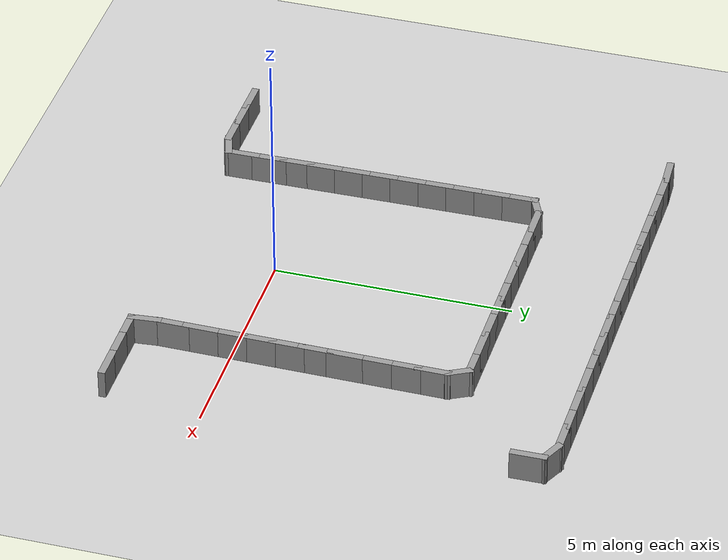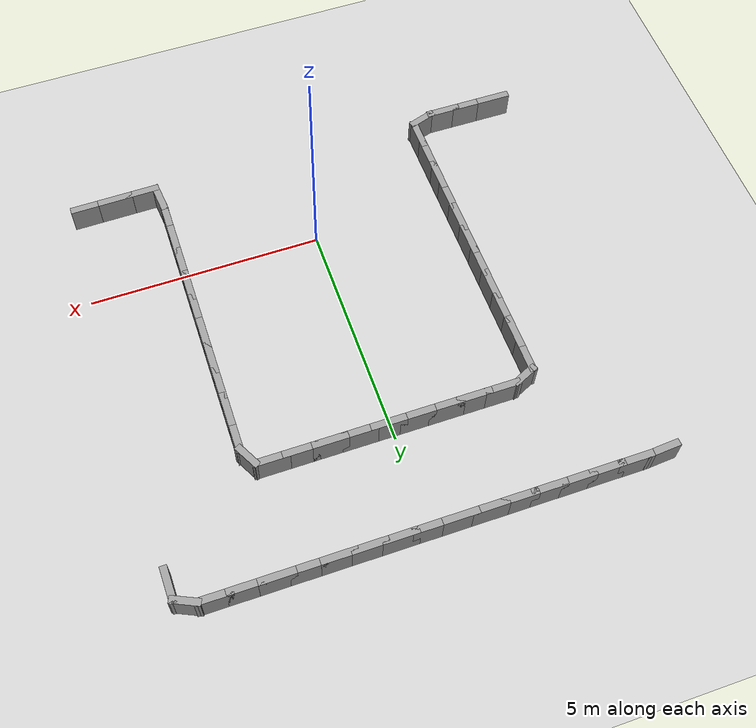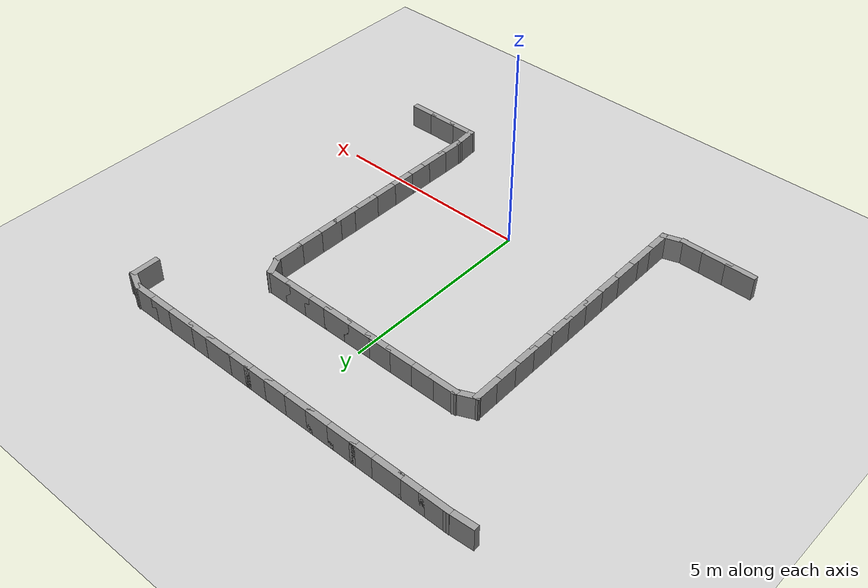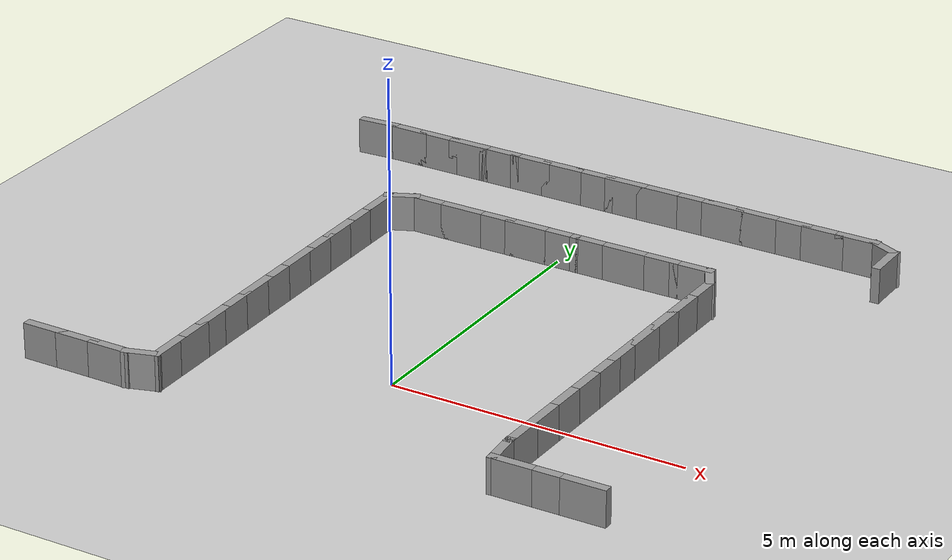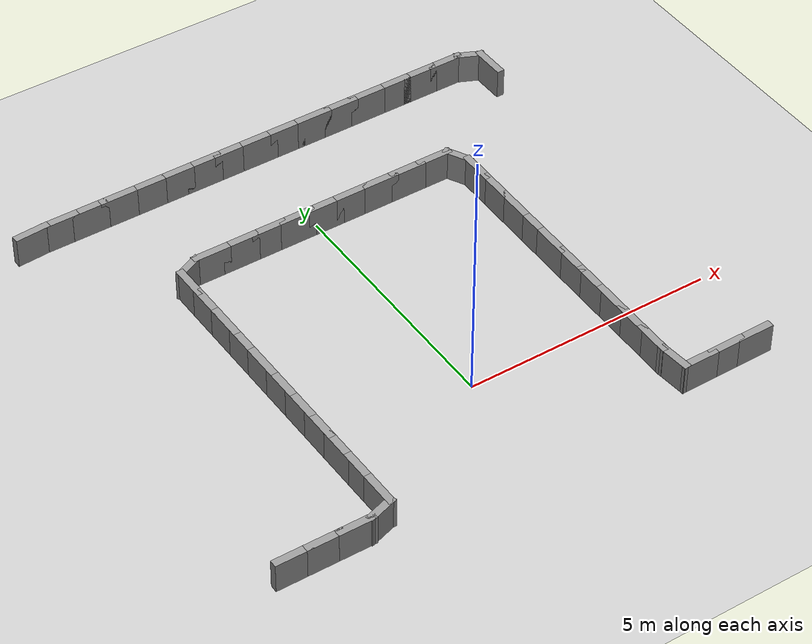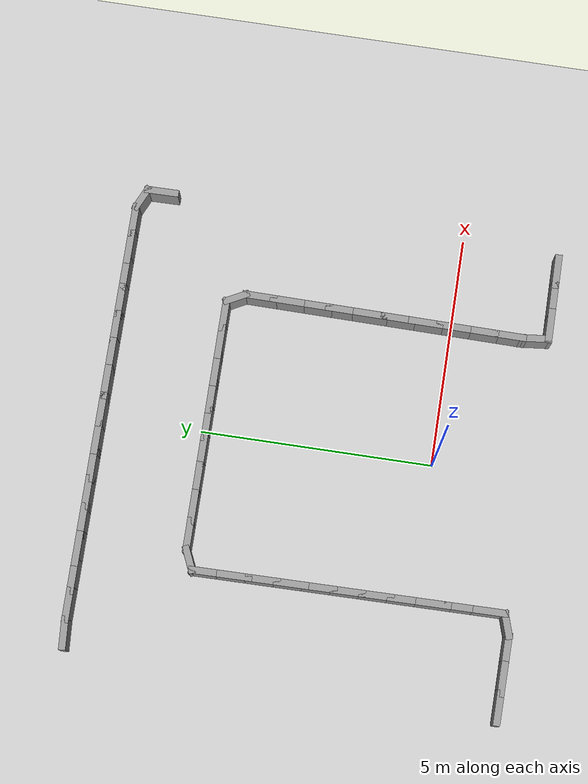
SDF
<sdf version="1.7">
 <world name="default">
  <model name="ground_plane">
   <static>1</static>
   <link name="link">
    <collision name="collision">
     <geometry><plane><normal>0 0 1</normal><size>100 100</size></plane></geometry>
     <surface><friction><ode><mu>100</mu><mu2>50</mu2></ode></friction></surface>
    </collision>
    <visual name="visual">
     <cast_shadows>0</cast_shadows>
     <geometry><plane><normal>0 0 1</normal><size>100 100</size></plane></geometry>
     <material>
      <script><uri>file://media/materials/scripts/gazebo.material</uri><name>Gazebo/Grey</name></script>
     </material>
    </visual>
   </link>
  </model>
  <model name="maze_corridor_easy">
   <link name="Wall_38">
    <collision name="Wall_38_Collision">
     <geometry><box><size>0.7157 0.1500 0.6000</size></box></geometry>
     <pose>0 0 0.3000 0 -0 0</pose>
    </collision>
    <visual name="Wall_38_Visual">
     <pose>0 0 0.3000 0 -0 0</pose>
     <geometry><box><size>0.7157 0.1500 0.6000</size></box></geometry>
     <material>
      <script><uri>file://media/materials/scripts/gazebo.material</uri><name>Gazebo/Grey</name></script>
      <ambient>1 1 1 1</ambient>
     </material>
    </visual>
    <pose>-4.7058 7.1110 0 0 -0 0.06325</pose>
   </link>
   <link name="Wall_39">
    <collision name="Wall_39_Collision">
     <geometry><box><size>0.7500 0.1500 0.6000</size></box></geometry>
     <pose>0 0 0.3000 0 -0 0</pose>
    </collision>
    <visual name="Wall_39_Visual">
     <pose>0 0 0.3000 0 -0 0</pose>
     <geometry><box><size>0.7500 0.1500 0.6000</size></box></geometry>
     <material>
      <script><uri>file://media/materials/scripts/gazebo.material</uri><name>Gazebo/Grey</name></script>
      <ambient>1 1 1 1</ambient>
     </material>
    </visual>
    <pose>-4.1235 7.1289 0 0 -0 0.00000</pose>
   </link>
   <link name="Wall_40">
    <collision name="Wall_40_Collision">
     <geometry><box><size>0.7500 0.1500 0.6000</size></box></geometry>
     <pose>0 0 0.3000 0 -0 0</pose>
    </collision>
    <visual name="Wall_40_Visual">
     <pose>0 0 0.3000 0 -0 0</pose>
     <geometry><box><size>0.7500 0.1500 0.6000</size></box></geometry>
     <material>
      <script><uri>file://media/materials/scripts/gazebo.material</uri><name>Gazebo/Grey</name></script>
      <ambient>1 1 1 1</ambient>
     </material>
    </visual>
    <pose>-3.5235 7.1289 0 0 -0 0.00000</pose>
   </link>
   <link name="Wall_41">
    <collision name="Wall_41_Collision">
     <geometry><box><size>0.7500 0.1500 0.6000</size></box></geometry>
     <pose>0 0 0.3000 0 -0 0</pose>
    </collision>
    <visual name="Wall_41_Visual">
     <pose>0 0 0.3000 0 -0 0</pose>
     <geometry><box><size>0.7500 0.1500 0.6000</size></box></geometry>
     <material>
      <script><uri>file://media/materials/scripts/gazebo.material</uri><name>Gazebo/Grey</name></script>
      <ambient>1 1 1 1</ambient>
     </material>
    </visual>
    <pose>-2.9235 7.1289 0 0 -0 0.00000</pose>
   </link>
   <link name="Wall_42">
    <collision name="Wall_42_Collision">
     <geometry><box><size>0.7500 0.1500 0.6000</size></box></geometry>
     <pose>0 0 0.3000 0 -0 0</pose>
    </collision>
    <visual name="Wall_42_Visual">
     <pose>0 0 0.3000 0 -0 0</pose>
     <geometry><box><size>0.7500 0.1500 0.6000</size></box></geometry>
     <material>
      <script><uri>file://media/materials/scripts/gazebo.material</uri><name>Gazebo/Grey</name></script>
      <ambient>1 1 1 1</ambient>
     </material>
    </visual>
    <pose>-2.3235 7.1289 0 0 -0 0.00000</pose>
   </link>
   <link name="Wall_43">
    <collision name="Wall_43_Collision">
     <geometry><box><size>0.7500 0.1500 0.6000</size></box></geometry>
     <pose>0 0 0.3000 0 -0 0</pose>
    </collision>
    <visual name="Wall_43_Visual">
     <pose>0 0 0.3000 0 -0 0</pose>
     <geometry><box><size>0.7500 0.1500 0.6000</size></box></geometry>
     <material>
      <script><uri>file://media/materials/scripts/gazebo.material</uri><name>Gazebo/Grey</name></script>
      <ambient>1 1 1 1</ambient>
     </material>
    </visual>
    <pose>-1.7235 7.1289 0 0 -0 0.00000</pose>
   </link>
   <link name="Wall_44">
    <collision name="Wall_44_Collision">
     <geometry><box><size>0.7500 0.1500 0.6000</size></box></geometry>
     <pose>0 0 0.3000 0 -0 0</pose>
    </collision>
    <visual name="Wall_44_Visual">
     <pose>0 0 0.3000 0 -0 0</pose>
     <geometry><box><size>0.7500 0.1500 0.6000</size></box></geometry>
     <material>
      <script><uri>file://media/materials/scripts/gazebo.material</uri><name>Gazebo/Grey</name></script>
      <ambient>1 1 1 1</ambient>
     </material>
    </visual>
    <pose>-1.1235 7.1289 0 0 -0 0.00000</pose>
   </link>
   <link name="Wall_45">
    <collision name="Wall_45_Collision">
     <geometry><box><size>0.7500 0.1500 0.6000</size></box></geometry>
     <pose>0 0 0.3000 0 -0 0</pose>
    </collision>
    <visual name="Wall_45_Visual">
     <pose>0 0 0.3000 0 -0 0</pose>
     <geometry><box><size>0.7500 0.1500 0.6000</size></box></geometry>
     <material>
      <script><uri>file://media/materials/scripts/gazebo.material</uri><name>Gazebo/Grey</name></script>
      <ambient>1 1 1 1</ambient>
     </material>
    </visual>
    <pose>-0.5235 7.1289 0 0 -0 0.00000</pose>
   </link>
   <link name="Wall_46">
    <collision name="Wall_46_Collision">
     <geometry><box><size>0.7500 0.1500 0.6000</size></box></geometry>
     <pose>0 0 0.3000 0 -0 0</pose>
    </collision>
    <visual name="Wall_46_Visual">
     <pose>0 0 0.3000 0 -0 0</pose>
     <geometry><box><size>0.7500 0.1500 0.6000</size></box></geometry>
     <material>
      <script><uri>file://media/materials/scripts/gazebo.material</uri><name>Gazebo/Grey</name></script>
      <ambient>1 1 1 1</ambient>
     </material>
    </visual>
    <pose>0.0765 7.1289 0 0 -0 0.00000</pose>
   </link>
   <link name="Wall_47">
    <collision name="Wall_47_Collision">
     <geometry><box><size>0.7500 0.1500 0.6000</size></box></geometry>
     <pose>0 0 0.3000 0 -0 0</pose>
    </collision>
    <visual name="Wall_47_Visual">
     <pose>0 0 0.3000 0 -0 0</pose>
     <geometry><box><size>0.7500 0.1500 0.6000</size></box></geometry>
     <material>
      <script><uri>file://media/materials/scripts/gazebo.material</uri><name>Gazebo/Grey</name></script>
      <ambient>1 1 1 1</ambient>
     </material>
    </visual>
    <pose>0.6765 7.1289 0 0 -0 0.00000</pose>
   </link>
   <link name="Wall_48">
    <collision name="Wall_48_Collision">
     <geometry><box><size>0.7500 0.1500 0.6000</size></box></geometry>
     <pose>0 0 0.3000 0 -0 0</pose>
    </collision>
    <visual name="Wall_48_Visual">
     <pose>0 0 0.3000 0 -0 0</pose>
     <geometry><box><size>0.7500 0.1500 0.6000</size></box></geometry>
     <material>
      <script><uri>file://media/materials/scripts/gazebo.material</uri><name>Gazebo/Grey</name></script>
      <ambient>1 1 1 1</ambient>
     </material>
    </visual>
    <pose>1.2765 7.1289 0 0 -0 0.00000</pose>
   </link>
   <link name="Wall_49">
    <collision name="Wall_49_Collision">
     <geometry><box><size>0.7500 0.1500 0.6000</size></box></geometry>
     <pose>0 0 0.3000 0 -0 0</pose>
    </collision>
    <visual name="Wall_49_Visual">
     <pose>0 0 0.3000 0 -0 0</pose>
     <geometry><box><size>0.7500 0.1500 0.6000</size></box></geometry>
     <material>
      <script><uri>file://media/materials/scripts/gazebo.material</uri><name>Gazebo/Grey</name></script>
      <ambient>1 1 1 1</ambient>
     </material>
    </visual>
    <pose>1.8765 7.1289 0 0 -0 0.00000</pose>
   </link>
   <link name="Wall_50">
    <collision name="Wall_50_Collision">
     <geometry><box><size>0.7500 0.1500 0.6000</size></box></geometry>
     <pose>0 0 0.3000 0 -0 0</pose>
    </collision>
    <visual name="Wall_50_Visual">
     <pose>0 0 0.3000 0 -0 0</pose>
     <geometry><box><size>0.7500 0.1500 0.6000</size></box></geometry>
     <material>
      <script><uri>file://media/materials/scripts/gazebo.material</uri><name>Gazebo/Grey</name></script>
      <ambient>1 1 1 1</ambient>
     </material>
    </visual>
    <pose>2.4765 7.1289 0 0 -0 0.00000</pose>
   </link>
   <link name="Wall_51">
    <collision name="Wall_51_Collision">
     <geometry><box><size>0.7500 0.1500 0.6000</size></box></geometry>
     <pose>0 0 0.3000 0 -0 0</pose>
    </collision>
    <visual name="Wall_51_Visual">
     <pose>0 0 0.3000 0 -0 0</pose>
     <geometry><box><size>0.7500 0.1500 0.6000</size></box></geometry>
     <material>
      <script><uri>file://media/materials/scripts/gazebo.material</uri><name>Gazebo/Grey</name></script>
      <ambient>1 1 1 1</ambient>
     </material>
    </visual>
    <pose>3.0765 7.1289 0 0 -0 0.00000</pose>
   </link>
   <link name="Wall_52">
    <collision name="Wall_52_Collision">
     <geometry><box><size>0.7500 0.1500 0.6000</size></box></geometry>
     <pose>0 0 0.3000 0 -0 0</pose>
    </collision>
    <visual name="Wall_52_Visual">
     <pose>0 0 0.3000 0 -0 0</pose>
     <geometry><box><size>0.7500 0.1500 0.6000</size></box></geometry>
     <material>
      <script><uri>file://media/materials/scripts/gazebo.material</uri><name>Gazebo/Grey</name></script>
      <ambient>1 1 1 1</ambient>
     </material>
    </visual>
    <pose>3.6765 7.1289 0 0 -0 0.00000</pose>
   </link>
   <link name="Wall_53">
    <collision name="Wall_53_Collision">
     <geometry><box><size>0.7500 0.1500 0.6000</size></box></geometry>
     <pose>0 0 0.3000 0 -0 0</pose>
    </collision>
    <visual name="Wall_53_Visual">
     <pose>0 0 0.3000 0 -0 0</pose>
     <geometry><box><size>0.7500 0.1500 0.6000</size></box></geometry>
     <material>
      <script><uri>file://media/materials/scripts/gazebo.material</uri><name>Gazebo/Grey</name></script>
      <ambient>1 1 1 1</ambient>
     </material>
    </visual>
    <pose>4.2765 7.1289 0 0 -0 0.00000</pose>
   </link>
   <link name="Wall_54">
    <collision name="Wall_54_Collision">
     <geometry><box><size>0.6043 0.1500 0.6000</size></box></geometry>
     <pose>0 0 0.3000 0 -0 0</pose>
    </collision>
    <visual name="Wall_54_Visual">
     <pose>0 0 0.3000 0 -0 0</pose>
     <geometry><box><size>0.6043 0.1500 0.6000</size></box></geometry>
     <material>
      <script><uri>file://media/materials/scripts/gazebo.material</uri><name>Gazebo/Grey</name></script>
      <ambient>1 1 1 1</ambient>
     </material>
    </visual>
    <pose>4.7831 7.0345 0 0 -0 -0.42841</pose>
   </link>
   <link name="Wall_55">
    <collision name="Wall_55_Collision">
     <geometry><box><size>0.7500 0.1500 0.6000</size></box></geometry>
     <pose>0 0 0.3000 0 -0 0</pose>
    </collision>
    <visual name="Wall_55_Visual">
     <pose>0 0 0.3000 0 -0 0</pose>
     <geometry><box><size>0.7500 0.1500 0.6000</size></box></geometry>
     <material>
      <script><uri>file://media/materials/scripts/gazebo.material</uri><name>Gazebo/Grey</name></script>
      <ambient>1 1 1 1</ambient>
     </material>
    </visual>
    <pose>4.9928 6.6402 0 0 -0 -1.56048</pose>
   </link>
   <link name="Wall_112">
    <collision name="Wall_112_Collision">
     <geometry><box><size>0.7500 0.1500 0.6000</size></box></geometry>
     <pose>0 0 0.3000 0 -0 0</pose>
    </collision>
    <visual name="Wall_112_Visual">
     <pose>0 0 0.3000 0 -0 0</pose>
     <geometry><box><size>0.7500 0.1500 0.6000</size></box></geometry>
     <material>
      <script><uri>file://media/materials/scripts/gazebo.material</uri><name>Gazebo/Grey</name></script>
      <ambient>1 1 1 1</ambient>
     </material>
    </visual>
    <pose>-4.8926 -2.0461 0 0 -0 -0.00743</pose>
   </link>
   <link name="Wall_113">
    <collision name="Wall_113_Collision">
     <geometry><box><size>0.7500 0.1500 0.6000</size></box></geometry>
     <pose>0 0 0.3000 0 -0 0</pose>
    </collision>
    <visual name="Wall_113_Visual">
     <pose>0 0 0.3000 0 -0 0</pose>
     <geometry><box><size>0.7500 0.1500 0.6000</size></box></geometry>
     <material>
      <script><uri>file://media/materials/scripts/gazebo.material</uri><name>Gazebo/Grey</name></script>
      <ambient>1 1 1 1</ambient>
     </material>
    </visual>
    <pose>-4.2926 -2.0506 0 0 -0 -0.00743</pose>
   </link>
   <link name="Wall_114">
    <collision name="Wall_114_Collision">
     <geometry><box><size>0.7500 0.1500 0.6000</size></box></geometry>
     <pose>0 0 0.3000 0 -0 0</pose>
    </collision>
    <visual name="Wall_114_Visual">
     <pose>0 0 0.3000 0 -0 0</pose>
     <geometry><box><size>0.7500 0.1500 0.6000</size></box></geometry>
     <material>
      <script><uri>file://media/materials/scripts/gazebo.material</uri><name>Gazebo/Grey</name></script>
      <ambient>1 1 1 1</ambient>
     </material>
    </visual>
    <pose>-3.6926 -2.0551 0 0 -0 -0.00743</pose>
   </link>
   <link name="Wall_115">
    <collision name="Wall_115_Collision">
     <geometry><box><size>0.6239 0.1500 0.6000</size></box></geometry>
     <pose>0 0 0.3000 0 -0 0</pose>
    </collision>
    <visual name="Wall_115_Visual">
     <pose>0 0 0.3000 0 -0 0</pose>
     <geometry><box><size>0.6239 0.1500 0.6000</size></box></geometry>
     <material>
      <script><uri>file://media/materials/scripts/gazebo.material</uri><name>Gazebo/Grey</name></script>
      <ambient>1 1 1 1</ambient>
     </material>
    </visual>
    <pose>-3.1668 -1.9856 0 0 -0 0.30724</pose>
   </link>
   <link name="Wall_116">
    <collision name="Wall_116_Collision">
     <geometry><box><size>0.7500 0.1500 0.6000</size></box></geometry>
     <pose>0 0 0.3000 0 -0 0</pose>
    </collision>
    <visual name="Wall_116_Visual">
     <pose>0 0 0.3000 0 -0 0</pose>
     <geometry><box><size>0.7500 0.1500 0.6000</size></box></geometry>
     <material>
      <script><uri>file://media/materials/scripts/gazebo.material</uri><name>Gazebo/Grey</name></script>
      <ambient>1 1 1 1</ambient>
     </material>
    </visual>
    <pose>-2.9440 -1.6140 0 0 -0 1.58131</pose>
   </link>
   <link name="Wall_117">
    <collision name="Wall_117_Collision">
     <geometry><box><size>0.7500 0.1500 0.6000</size></box></geometry>
     <pose>0 0 0.3000 0 -0 0</pose>
    </collision>
    <visual name="Wall_117_Visual">
     <pose>0 0 0.3000 0 -0 0</pose>
     <geometry><box><size>0.7500 0.1500 0.6000</size></box></geometry>
     <material>
      <script><uri>file://media/materials/scripts/gazebo.material</uri><name>Gazebo/Grey</name></script>
      <ambient>1 1 1 1</ambient>
     </material>
    </visual>
    <pose>-2.9503 -1.0140 0 0 -0 1.58131</pose>
   </link>
   <link name="Wall_118">
    <collision name="Wall_118_Collision">
     <geometry><box><size>0.7500 0.1500 0.6000</size></box></geometry>
     <pose>0 0 0.3000 0 -0 0</pose>
    </collision>
    <visual name="Wall_118_Visual">
     <pose>0 0 0.3000 0 -0 0</pose>
     <geometry><box><size>0.7500 0.1500 0.6000</size></box></geometry>
     <material>
      <script><uri>file://media/materials/scripts/gazebo.material</uri><name>Gazebo/Grey</name></script>
      <ambient>1 1 1 1</ambient>
     </material>
    </visual>
    <pose>-2.9567 -0.4140 0 0 -0 1.58131</pose>
   </link>
   <link name="Wall_119">
    <collision name="Wall_119_Collision">
     <geometry><box><size>0.7500 0.1500 0.6000</size></box></geometry>
     <pose>0 0 0.3000 0 -0 0</pose>
    </collision>
    <visual name="Wall_119_Visual">
     <pose>0 0 0.3000 0 -0 0</pose>
     <geometry><box><size>0.7500 0.1500 0.6000</size></box></geometry>
     <material>
      <script><uri>file://media/materials/scripts/gazebo.material</uri><name>Gazebo/Grey</name></script>
      <ambient>1 1 1 1</ambient>
     </material>
    </visual>
    <pose>-2.9630 0.1859 0 0 -0 1.58131</pose>
   </link>
   <link name="Wall_120">
    <collision name="Wall_120_Collision">
     <geometry><box><size>0.7500 0.1500 0.6000</size></box></geometry>
     <pose>0 0 0.3000 0 -0 0</pose>
    </collision>
    <visual name="Wall_120_Visual">
     <pose>0 0 0.3000 0 -0 0</pose>
     <geometry><box><size>0.7500 0.1500 0.6000</size></box></geometry>
     <material>
      <script><uri>file://media/materials/scripts/gazebo.material</uri><name>Gazebo/Grey</name></script>
      <ambient>1 1 1 1</ambient>
     </material>
    </visual>
    <pose>-2.9693 0.7859 0 0 -0 1.58131</pose>
   </link>
   <link name="Wall_121">
    <collision name="Wall_121_Collision">
     <geometry><box><size>0.7500 0.1500 0.6000</size></box></geometry>
     <pose>0 0 0.3000 0 -0 0</pose>
    </collision>
    <visual name="Wall_121_Visual">
     <pose>0 0 0.3000 0 -0 0</pose>
     <geometry><box><size>0.7500 0.1500 0.6000</size></box></geometry>
     <material>
      <script><uri>file://media/materials/scripts/gazebo.material</uri><name>Gazebo/Grey</name></script>
      <ambient>1 1 1 1</ambient>
     </material>
    </visual>
    <pose>-2.9756 1.3859 0 0 -0 1.58131</pose>
   </link>
   <link name="Wall_122">
    <collision name="Wall_122_Collision">
     <geometry><box><size>0.7500 0.1500 0.6000</size></box></geometry>
     <pose>0 0 0.3000 0 -0 0</pose>
    </collision>
    <visual name="Wall_122_Visual">
     <pose>0 0 0.3000 0 -0 0</pose>
     <geometry><box><size>0.7500 0.1500 0.6000</size></box></geometry>
     <material>
      <script><uri>file://media/materials/scripts/gazebo.material</uri><name>Gazebo/Grey</name></script>
      <ambient>1 1 1 1</ambient>
     </material>
    </visual>
    <pose>-2.9819 1.9858 0 0 -0 1.58131</pose>
   </link>
   <link name="Wall_123">
    <collision name="Wall_123_Collision">
     <geometry><box><size>0.7500 0.1500 0.6000</size></box></geometry>
     <pose>0 0 0.3000 0 -0 0</pose>
    </collision>
    <visual name="Wall_123_Visual">
     <pose>0 0 0.3000 0 -0 0</pose>
     <geometry><box><size>0.7500 0.1500 0.6000</size></box></geometry>
     <material>
      <script><uri>file://media/materials/scripts/gazebo.material</uri><name>Gazebo/Grey</name></script>
      <ambient>1 1 1 1</ambient>
     </material>
    </visual>
    <pose>-2.9882 2.5858 0 0 -0 1.58131</pose>
   </link>
   <link name="Wall_124">
    <collision name="Wall_124_Collision">
     <geometry><box><size>0.7500 0.1500 0.6000</size></box></geometry>
     <pose>0 0 0.3000 0 -0 0</pose>
    </collision>
    <visual name="Wall_124_Visual">
     <pose>0 0 0.3000 0 -0 0</pose>
     <geometry><box><size>0.7500 0.1500 0.6000</size></box></geometry>
     <material>
      <script><uri>file://media/materials/scripts/gazebo.material</uri><name>Gazebo/Grey</name></script>
      <ambient>1 1 1 1</ambient>
     </material>
    </visual>
    <pose>-2.9945 3.1858 0 0 -0 1.58131</pose>
   </link>
   <link name="Wall_125">
    <collision name="Wall_125_Collision">
     <geometry><box><size>0.7500 0.1500 0.6000</size></box></geometry>
     <pose>0 0 0.3000 0 -0 0</pose>
    </collision>
    <visual name="Wall_125_Visual">
     <pose>0 0 0.3000 0 -0 0</pose>
     <geometry><box><size>0.7500 0.1500 0.6000</size></box></geometry>
     <material>
      <script><uri>file://media/materials/scripts/gazebo.material</uri><name>Gazebo/Grey</name></script>
      <ambient>1 1 1 1</ambient>
     </material>
    </visual>
    <pose>-3.0008 3.7857 0 0 -0 1.58131</pose>
   </link>
   <link name="Wall_126">
    <collision name="Wall_126_Collision">
     <geometry><box><size>0.7500 0.1500 0.6000</size></box></geometry>
     <pose>0 0 0.3000 0 -0 0</pose>
    </collision>
    <visual name="Wall_126_Visual">
     <pose>0 0 0.3000 0 -0 0</pose>
     <geometry><box><size>0.7500 0.1500 0.6000</size></box></geometry>
     <material>
      <script><uri>file://media/materials/scripts/gazebo.material</uri><name>Gazebo/Grey</name></script>
      <ambient>1 1 1 1</ambient>
     </material>
    </visual>
    <pose>-3.0071 4.3857 0 0 -0 1.58131</pose>
   </link>
   <link name="Wall_127">
    <collision name="Wall_127_Collision">
     <geometry><box><size>0.6023 0.1500 0.6000</size></box></geometry>
     <pose>0 0 0.3000 0 -0 0</pose>
    </collision>
    <visual name="Wall_127_Visual">
     <pose>0 0 0.3000 0 -0 0</pose>
     <geometry><box><size>0.6023 0.1500 0.6000</size></box></geometry>
     <material>
      <script><uri>file://media/materials/scripts/gazebo.material</uri><name>Gazebo/Grey</name></script>
      <ambient>1 1 1 1</ambient>
     </material>
    </visual>
    <pose>-2.8040 4.7784 0 0 -0 0.42246</pose>
   </link>
   <link name="Wall_128">
    <collision name="Wall_128_Collision">
     <geometry><box><size>0.7500 0.1500 0.6000</size></box></geometry>
     <pose>0 0 0.3000 0 -0 0</pose>
    </collision>
    <visual name="Wall_128_Visual">
     <pose>0 0 0.3000 0 -0 0</pose>
     <geometry><box><size>0.7500 0.1500 0.6000</size></box></geometry>
     <material>
      <script><uri>file://media/materials/scripts/gazebo.material</uri><name>Gazebo/Grey</name></script>
      <ambient>1 1 1 1</ambient>
     </material>
    </visual>
    <pose>-2.2977 4.8711 0 0 -0 0.00000</pose>
   </link>
   <link name="Wall_129">
    <collision name="Wall_129_Collision">
     <geometry><box><size>0.7500 0.1500 0.6000</size></box></geometry>
     <pose>0 0 0.3000 0 -0 0</pose>
    </collision>
    <visual name="Wall_129_Visual">
     <pose>0 0 0.3000 0 -0 0</pose>
     <geometry><box><size>0.7500 0.1500 0.6000</size></box></geometry>
     <material>
      <script><uri>file://media/materials/scripts/gazebo.material</uri><name>Gazebo/Grey</name></script>
      <ambient>1 1 1 1</ambient>
     </material>
    </visual>
    <pose>-1.6977 4.8711 0 0 -0 0.00000</pose>
   </link>
   <link name="Wall_130">
    <collision name="Wall_130_Collision">
     <geometry><box><size>0.7500 0.1500 0.6000</size></box></geometry>
     <pose>0 0 0.3000 0 -0 0</pose>
    </collision>
    <visual name="Wall_130_Visual">
     <pose>0 0 0.3000 0 -0 0</pose>
     <geometry><box><size>0.7500 0.1500 0.6000</size></box></geometry>
     <material>
      <script><uri>file://media/materials/scripts/gazebo.material</uri><name>Gazebo/Grey</name></script>
      <ambient>1 1 1 1</ambient>
     </material>
    </visual>
    <pose>-1.0977 4.8711 0 0 -0 0.00000</pose>
   </link>
   <link name="Wall_131">
    <collision name="Wall_131_Collision">
     <geometry><box><size>0.7500 0.1500 0.6000</size></box></geometry>
     <pose>0 0 0.3000 0 -0 0</pose>
    </collision>
    <visual name="Wall_131_Visual">
     <pose>0 0 0.3000 0 -0 0</pose>
     <geometry><box><size>0.7500 0.1500 0.6000</size></box></geometry>
     <material>
      <script><uri>file://media/materials/scripts/gazebo.material</uri><name>Gazebo/Grey</name></script>
      <ambient>1 1 1 1</ambient>
     </material>
    </visual>
    <pose>-0.4977 4.8711 0 0 -0 0.00000</pose>
   </link>
   <link name="Wall_132">
    <collision name="Wall_132_Collision">
     <geometry><box><size>0.7500 0.1500 0.6000</size></box></geometry>
     <pose>0 0 0.3000 0 -0 0</pose>
    </collision>
    <visual name="Wall_132_Visual">
     <pose>0 0 0.3000 0 -0 0</pose>
     <geometry><box><size>0.7500 0.1500 0.6000</size></box></geometry>
     <material>
      <script><uri>file://media/materials/scripts/gazebo.material</uri><name>Gazebo/Grey</name></script>
      <ambient>1 1 1 1</ambient>
     </material>
    </visual>
    <pose>0.1023 4.8711 0 0 -0 0.00000</pose>
   </link>
   <link name="Wall_133">
    <collision name="Wall_133_Collision">
     <geometry><box><size>0.7500 0.1500 0.6000</size></box></geometry>
     <pose>0 0 0.3000 0 -0 0</pose>
    </collision>
    <visual name="Wall_133_Visual">
     <pose>0 0 0.3000 0 -0 0</pose>
     <geometry><box><size>0.7500 0.1500 0.6000</size></box></geometry>
     <material>
      <script><uri>file://media/materials/scripts/gazebo.material</uri><name>Gazebo/Grey</name></script>
      <ambient>1 1 1 1</ambient>
     </material>
    </visual>
    <pose>0.7023 4.8711 0 0 -0 0.00000</pose>
   </link>
   <link name="Wall_134">
    <collision name="Wall_134_Collision">
     <geometry><box><size>0.7500 0.1500 0.6000</size></box></geometry>
     <pose>0 0 0.3000 0 -0 0</pose>
    </collision>
    <visual name="Wall_134_Visual">
     <pose>0 0 0.3000 0 -0 0</pose>
     <geometry><box><size>0.7500 0.1500 0.6000</size></box></geometry>
     <material>
      <script><uri>file://media/materials/scripts/gazebo.material</uri><name>Gazebo/Grey</name></script>
      <ambient>1 1 1 1</ambient>
     </material>
    </visual>
    <pose>1.3023 4.8711 0 0 -0 0.00000</pose>
   </link>
   <link name="Wall_135">
    <collision name="Wall_135_Collision">
     <geometry><box><size>0.7500 0.1500 0.6000</size></box></geometry>
     <pose>0 0 0.3000 0 -0 0</pose>
    </collision>
    <visual name="Wall_135_Visual">
     <pose>0 0 0.3000 0 -0 0</pose>
     <geometry><box><size>0.7500 0.1500 0.6000</size></box></geometry>
     <material>
      <script><uri>file://media/materials/scripts/gazebo.material</uri><name>Gazebo/Grey</name></script>
      <ambient>1 1 1 1</ambient>
     </material>
    </visual>
    <pose>1.9023 4.8711 0 0 -0 0.00000</pose>
   </link>
   <link name="Wall_136">
    <collision name="Wall_136_Collision">
     <geometry><box><size>0.7500 0.1500 0.6000</size></box></geometry>
     <pose>0 0 0.3000 0 -0 0</pose>
    </collision>
    <visual name="Wall_136_Visual">
     <pose>0 0 0.3000 0 -0 0</pose>
     <geometry><box><size>0.7500 0.1500 0.6000</size></box></geometry>
     <material>
      <script><uri>file://media/materials/scripts/gazebo.material</uri><name>Gazebo/Grey</name></script>
      <ambient>1 1 1 1</ambient>
     </material>
    </visual>
    <pose>2.5023 4.8711 0 0 -0 0.00000</pose>
   </link>
   <link name="Wall_137">
    <collision name="Wall_137_Collision">
     <geometry><box><size>0.5910 0.1500 0.6000</size></box></geometry>
     <pose>0 0 0.3000 0 -0 0</pose>
    </collision>
    <visual name="Wall_137_Visual">
     <pose>0 0 0.3000 0 -0 0</pose>
     <geometry><box><size>0.5910 0.1500 0.6000</size></box></geometry>
     <material>
      <script><uri>file://media/materials/scripts/gazebo.material</uri><name>Gazebo/Grey</name></script>
      <ambient>1 1 1 1</ambient>
     </material>
    </visual>
    <pose>2.9052 4.6761 0 0 -0 -1.08515</pose>
   </link>
   <link name="Wall_138">
    <collision name="Wall_138_Collision">
     <geometry><box><size>0.7500 0.1500 0.6000</size></box></geometry>
     <pose>0 0 0.3000 0 -0 0</pose>
    </collision>
    <visual name="Wall_138_Visual">
     <pose>0 0 0.3000 0 -0 0</pose>
     <geometry><box><size>0.7500 0.1500 0.6000</size></box></geometry>
     <material>
      <script><uri>file://media/materials/scripts/gazebo.material</uri><name>Gazebo/Grey</name></script>
      <ambient>1 1 1 1</ambient>
     </material>
    </visual>
    <pose>3.0050 4.1811 0 0 -0 -1.58131</pose>
   </link>
   <link name="Wall_139">
    <collision name="Wall_139_Collision">
     <geometry><box><size>0.7500 0.1500 0.6000</size></box></geometry>
     <pose>0 0 0.3000 0 -0 0</pose>
    </collision>
    <visual name="Wall_139_Visual">
     <pose>0 0 0.3000 0 -0 0</pose>
     <geometry><box><size>0.7500 0.1500 0.6000</size></box></geometry>
     <material>
      <script><uri>file://media/materials/scripts/gazebo.material</uri><name>Gazebo/Grey</name></script>
      <ambient>1 1 1 1</ambient>
     </material>
    </visual>
    <pose>2.9987 3.5812 0 0 -0 -1.58131</pose>
   </link>
   <link name="Wall_140">
    <collision name="Wall_140_Collision">
     <geometry><box><size>0.7500 0.1500 0.6000</size></box></geometry>
     <pose>0 0 0.3000 0 -0 0</pose>
    </collision>
    <visual name="Wall_140_Visual">
     <pose>0 0 0.3000 0 -0 0</pose>
     <geometry><box><size>0.7500 0.1500 0.6000</size></box></geometry>
     <material>
      <script><uri>file://media/materials/scripts/gazebo.material</uri><name>Gazebo/Grey</name></script>
      <ambient>1 1 1 1</ambient>
     </material>
    </visual>
    <pose>2.9924 2.9812 0 0 -0 -1.58131</pose>
   </link>
   <link name="Wall_141">
    <collision name="Wall_141_Collision">
     <geometry><box><size>0.7500 0.1500 0.6000</size></box></geometry>
     <pose>0 0 0.3000 0 -0 0</pose>
    </collision>
    <visual name="Wall_141_Visual">
     <pose>0 0 0.3000 0 -0 0</pose>
     <geometry><box><size>0.7500 0.1500 0.6000</size></box></geometry>
     <material>
      <script><uri>file://media/materials/scripts/gazebo.material</uri><name>Gazebo/Grey</name></script>
      <ambient>1 1 1 1</ambient>
     </material>
    </visual>
    <pose>2.9861 2.3812 0 0 -0 -1.58131</pose>
   </link>
   <link name="Wall_142">
    <collision name="Wall_142_Collision">
     <geometry><box><size>0.7500 0.1500 0.6000</size></box></geometry>
     <pose>0 0 0.3000 0 -0 0</pose>
    </collision>
    <visual name="Wall_142_Visual">
     <pose>0 0 0.3000 0 -0 0</pose>
     <geometry><box><size>0.7500 0.1500 0.6000</size></box></geometry>
     <material>
      <script><uri>file://media/materials/scripts/gazebo.material</uri><name>Gazebo/Grey</name></script>
      <ambient>1 1 1 1</ambient>
     </material>
    </visual>
    <pose>2.9797 1.7813 0 0 -0 -1.58131</pose>
   </link>
   <link name="Wall_143">
    <collision name="Wall_143_Collision">
     <geometry><box><size>0.7500 0.1500 0.6000</size></box></geometry>
     <pose>0 0 0.3000 0 -0 0</pose>
    </collision>
    <visual name="Wall_143_Visual">
     <pose>0 0 0.3000 0 -0 0</pose>
     <geometry><box><size>0.7500 0.1500 0.6000</size></box></geometry>
     <material>
      <script><uri>file://media/materials/scripts/gazebo.material</uri><name>Gazebo/Grey</name></script>
      <ambient>1 1 1 1</ambient>
     </material>
    </visual>
    <pose>2.9734 1.1813 0 0 -0 -1.58131</pose>
   </link>
   <link name="Wall_144">
    <collision name="Wall_144_Collision">
     <geometry><box><size>0.7500 0.1500 0.6000</size></box></geometry>
     <pose>0 0 0.3000 0 -0 0</pose>
    </collision>
    <visual name="Wall_144_Visual">
     <pose>0 0 0.3000 0 -0 0</pose>
     <geometry><box><size>0.7500 0.1500 0.6000</size></box></geometry>
     <material>
      <script><uri>file://media/materials/scripts/gazebo.material</uri><name>Gazebo/Grey</name></script>
      <ambient>1 1 1 1</ambient>
     </material>
    </visual>
    <pose>2.9671 0.5813 0 0 -0 -1.58131</pose>
   </link>
   <link name="Wall_145">
    <collision name="Wall_145_Collision">
     <geometry><box><size>0.7500 0.1500 0.6000</size></box></geometry>
     <pose>0 0 0.3000 0 -0 0</pose>
    </collision>
    <visual name="Wall_145_Visual">
     <pose>0 0 0.3000 0 -0 0</pose>
     <geometry><box><size>0.7500 0.1500 0.6000</size></box></geometry>
     <material>
      <script><uri>file://media/materials/scripts/gazebo.material</uri><name>Gazebo/Grey</name></script>
      <ambient>1 1 1 1</ambient>
     </material>
    </visual>
    <pose>2.9608 -0.0186 0 0 -0 -1.58131</pose>
   </link>
   <link name="Wall_146">
    <collision name="Wall_146_Collision">
     <geometry><box><size>0.7500 0.1500 0.6000</size></box></geometry>
     <pose>0 0 0.3000 0 -0 0</pose>
    </collision>
    <visual name="Wall_146_Visual">
     <pose>0 0 0.3000 0 -0 0</pose>
     <geometry><box><size>0.7500 0.1500 0.6000</size></box></geometry>
     <material>
      <script><uri>file://media/materials/scripts/gazebo.material</uri><name>Gazebo/Grey</name></script>
      <ambient>1 1 1 1</ambient>
     </material>
    </visual>
    <pose>2.9545 -0.6186 0 0 -0 -1.58131</pose>
   </link>
   <link name="Wall_147">
    <collision name="Wall_147_Collision">
     <geometry><box><size>0.7500 0.1500 0.6000</size></box></geometry>
     <pose>0 0 0.3000 0 -0 0</pose>
    </collision>
    <visual name="Wall_147_Visual">
     <pose>0 0 0.3000 0 -0 0</pose>
     <geometry><box><size>0.7500 0.1500 0.6000</size></box></geometry>
     <material>
      <script><uri>file://media/materials/scripts/gazebo.material</uri><name>Gazebo/Grey</name></script>
      <ambient>1 1 1 1</ambient>
     </material>
    </visual>
    <pose>2.9482 -1.2186 0 0 -0 -1.58131</pose>
   </link>
   <link name="Wall_148">
    <collision name="Wall_148_Collision">
     <geometry><box><size>0.6942 0.1500 0.6000</size></box></geometry>
     <pose>0 0 0.3000 0 -0 0</pose>
    </collision>
    <visual name="Wall_148_Visual">
     <pose>0 0 0.3000 0 -0 0</pose>
     <geometry><box><size>0.6942 0.1500 0.6000</size></box></geometry>
     <material>
      <script><uri>file://media/materials/scripts/gazebo.material</uri><name>Gazebo/Grey</name></script>
      <ambient>1 1 1 1</ambient>
     </material>
    </visual>
    <pose>2.9711 -1.7894 0 0 -0 -1.47480</pose>
   </link>
   <link name="Wall_149">
    <collision name="Wall_149_Collision">
     <geometry><box><size>0.7500 0.1500 0.6000</size></box></geometry>
     <pose>0 0 0.3000 0 -0 0</pose>
    </collision>
    <visual name="Wall_149_Visual">
     <pose>0 0 0.3000 0 -0 0</pose>
     <geometry><box><size>0.7500 0.1500 0.6000</size></box></geometry>
     <material>
      <script><uri>file://media/materials/scripts/gazebo.material</uri><name>Gazebo/Grey</name></script>
      <ambient>1 1 1 1</ambient>
     </material>
    </visual>
    <pose>3.2972 -2.0580 0 0 -0 0.00743</pose>
   </link>
   <link name="Wall_150">
    <collision name="Wall_150_Collision">
     <geometry><box><size>0.7500 0.1500 0.6000</size></box></geometry>
     <pose>0 0 0.3000 0 -0 0</pose>
    </collision>
    <visual name="Wall_150_Visual">
     <pose>0 0 0.3000 0 -0 0</pose>
     <geometry><box><size>0.7500 0.1500 0.6000</size></box></geometry>
     <material>
      <script><uri>file://media/materials/scripts/gazebo.material</uri><name>Gazebo/Grey</name></script>
      <ambient>1 1 1 1</ambient>
     </material>
    </visual>
    <pose>3.8972 -2.0535 0 0 -0 0.00743</pose>
   </link>
   <link name="Wall_151">
    <collision name="Wall_151_Collision">
     <geometry><box><size>0.7500 0.1500 0.6000</size></box></geometry>
     <pose>0 0 0.3000 0 -0 0</pose>
    </collision>
    <visual name="Wall_151_Visual">
     <pose>0 0 0.3000 0 -0 0</pose>
     <geometry><box><size>0.7500 0.1500 0.6000</size></box></geometry>
     <material>
      <script><uri>file://media/materials/scripts/gazebo.material</uri><name>Gazebo/Grey</name></script>
      <ambient>1 1 1 1</ambient>
     </material>
    </visual>
    <pose>4.4972 -2.0491 0 0 -0 0.00743</pose>
   </link>
   <static>1</static>
  </model>
 </world>
</sdf>
